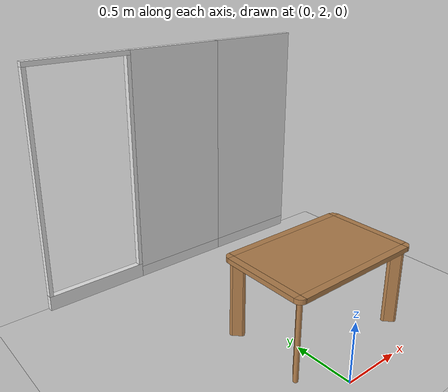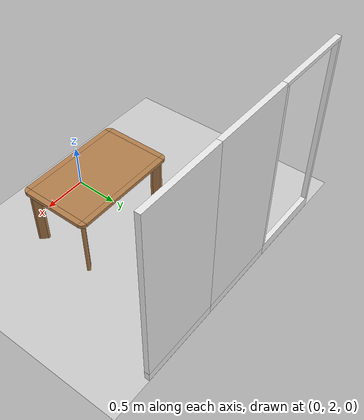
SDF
<sdf version="1.6">
 <world name="default">
  <model name="gplane">
   <link name="body">
    <collision name="gplane_coll">
     <geometry><plane><normal>0 0 1</normal><size>8 10</size></plane></geometry>
     <surface><contact><ode><kp>1e+06</kp><kd>1</kd></ode></contact></surface>
     <laser_retro>2000</laser_retro>
    </collision>
    <visual name="gplane_vis">
     <geometry><plane><normal>0 0 1</normal><size>6.585 8.405</size></plane></geometry>
     <material>
      <script>
       <uri>model://base_materials/carpet/scripts</uri>
       <uri>model://base_materials/carpet/textures</uri>
       <name>carpet/carpet01</name>
      </script>
     </material>
     <cast_shadows>0</cast_shadows>
    </visual>
    <velocity_decay><linear>0</linear><angular>0</angular></velocity_decay>
   </link>
   <static>1</static>
  </model>
  <model name="wall_right_c">
   <link name="link">
    <inertial>
     <mass>50</mass>
     <inertia><ixx>1</ixx><ixy>0</ixy><ixz>0</ixz><iyy>1</iyy><iyz>0</iyz><izz>1</izz></inertia>
    </inertial>
    <visual name="bottom_frame">
     <pose>0 0 0.05 0 -0 0</pose>
     <geometry><box><size>0.055 0.9 0.1</size></box></geometry>
     <material>
      <script><uri>model://base_materials/color/scripts</uri><name>hsr_color/white</name></script>
     </material>
    </visual>
    <collision name="collision_bottom_frame">
     <pose>0 0 0.05 0 -0 0</pose>
     <geometry><box><size>0.055 0.9 0.1</size></box></geometry>
    </collision>
    <visual name="wall">
     <pose>0 0 1.095 0 -0 0</pose>
     <geometry><box><size>0.055 0.9 1.99</size></box></geometry>
     <material>
      <script>
       <uri>model://base_materials/wall/scripts</uri>
       <uri>model://base_materials/wall/textures</uri>
       <name>wall/white_noise</name>
      </script>
     </material>
    </visual>
    <collision name="collision_wall">
     <pose>0 0 1.095 0 -0 0</pose>
     <geometry><box><size>0.055 0.9 1.99</size></box></geometry>
    </collision>
    <velocity_decay><linear>0</linear><angular>0</angular></velocity_decay>
   </link>
   <static>1</static>
   <pose>0.9875 4.175 0 0 -0 1.5708</pose>
  </model>
  <model name="wall_right_d">
   <link name="link">
    <inertial>
     <mass>50</mass>
     <inertia><ixx>1</ixx><ixy>0</ixy><ixz>0</ixz><iyy>1</iyy><iyz>0</iyz><izz>1</izz></inertia>
    </inertial>
    <visual name="bottom_frame">
     <pose>0 0 0.05 0 -0 0</pose>
     <geometry><box><size>0.055 0.9 0.1</size></box></geometry>
     <material>
      <script><uri>model://base_materials/color/scripts</uri><name>hsr_color/white</name></script>
     </material>
    </visual>
    <collision name="collision_bottom_frame">
     <pose>0 0 0.05 0 -0 0</pose>
     <geometry><box><size>0.055 0.9 0.1</size></box></geometry>
    </collision>
    <visual name="wall">
     <pose>0 0 1.095 0 -0 0</pose>
     <geometry><box><size>0.055 0.9 1.99</size></box></geometry>
     <material>
      <script>
       <uri>model://base_materials/wall/scripts</uri>
       <uri>model://base_materials/wall/textures</uri>
       <name>wall/white_noise</name>
      </script>
     </material>
    </visual>
    <collision name="collision_wall">
     <pose>0 0 1.095 0 -0 0</pose>
     <geometry><box><size>0.055 0.9 1.99</size></box></geometry>
    </collision>
    <velocity_decay><linear>0</linear><angular>0</angular></velocity_decay>
   </link>
   <static>1</static>
   <pose>0.0875 4.175 0 0 -0 1.5708</pose>
  </model>
  <model name="wall_right_e">
   <link name="link">
    <inertial>
     <mass>50</mass>
     <inertia><ixx>1</ixx><ixy>0</ixy><ixz>0</ixz><iyy>1</iyy><iyz>0</iyz><izz>1</izz></inertia>
    </inertial>
    <visual name="bottom_frame">
     <pose>0 0 0.065 0 -0 0</pose>
     <geometry><box><size>0.055 0.9 0.13</size></box></geometry>
     <material>
      <script><uri>model://base_materials/color/scripts</uri><name>hsr_color/white</name></script>
     </material>
    </visual>
    <collision name="collision_bottom_frame">
     <pose>0 0 0.065 0 -0 0</pose>
     <geometry><box><size>0.055 0.9 0.13</size></box></geometry>
    </collision>
    <visual name="right_frame">
     <pose>0 0.4325 1.09 0 -0 0</pose>
     <geometry><box><size>0.055 0.035 1.92</size></box></geometry>
     <material>
      <script><uri>model://base_materials/color/scripts</uri><name>hsr_color/white</name></script>
     </material>
    </visual>
    <collision name="collision_right_frame">
     <pose>0 0.4325 1.09 0 -0 0</pose>
     <geometry><box><size>0.055 0.035 1.92</size></box></geometry>
    </collision>
    <visual name="left_frame">
     <pose>0 -0.4325 1.09 0 -0 0</pose>
     <geometry><box><size>0.055 0.035 1.92</size></box></geometry>
     <material>
      <script><uri>model://base_materials/color/scripts</uri><name>hsr_color/white</name></script>
     </material>
    </visual>
    <collision name="collision_left_frame">
     <pose>0 -0.4325 1.09 0 -0 0</pose>
     <geometry><box><size>0.055 0.035 1.92</size></box></geometry>
    </collision>
    <visual name="top_frame">
     <pose>0 0 2.07 0 -0 0</pose>
     <geometry><box><size>0.055 0.9 0.04</size></box></geometry>
     <material>
      <script><uri>model://base_materials/color/scripts</uri><name>hsr_color/white</name></script>
     </material>
    </visual>
    <collision name="collision_top_frame">
     <pose>0 0 2.07 0 -0 0</pose>
     <geometry><box><size>0.055 0.9 0.04</size></box></geometry>
    </collision>
    <velocity_decay><linear>0</linear><angular>0</angular></velocity_decay>
   </link>
   <static>1</static>
   <pose>-0.8125 4.175 0 0 -0 1.5708</pose>
  </model>
  <model name="kitchen_table">
   <link name="link">
    <inertial>
     <mass>10</mass>
     <inertia><ixx>1</ixx><ixy>0</ixy><ixz>0</ixz><iyy>1</iyy><iyz>0</iyz><izz>1</izz></inertia>
    </inertial>
    <visual name="center_board">
     <pose>0 0 0.68 0 -0 0</pose>
     <geometry><box><size>0.68 1.13 0.04</size></box></geometry>
     <material>
      <script><uri>model://base_materials/wood/scripts/wood.material</uri><name>base_materials/wood</name></script>
     </material>
    </visual>
    <collision name="collision_center_board">
     <pose>0 0 0.68 0 -0 0</pose>
     <geometry><box><size>0.68 1.13 0.04</size></box></geometry>
    </collision>
    <visual name="front_board">
     <pose>0.37 0 0.68 0 -0 0</pose>
     <geometry><box><size>0.06 1.13 0.04</size></box></geometry>
     <material>
      <script><uri>model://base_materials/wood/scripts/wood.material</uri><name>base_materials/wood</name></script>
     </material>
    </visual>
    <collision name="collision_front_board">
     <pose>0.37 0 0.68 0 -0 0</pose>
     <geometry><box><size>0.06 1.13 0.04</size></box></geometry>
    </collision>
    <visual name="back_board">
     <pose>-0.37 0 0.68 0 -0 0</pose>
     <geometry><box><size>0.06 1.13 0.04</size></box></geometry>
     <material>
      <script><uri>model://base_materials/wood/scripts/wood.material</uri><name>base_materials/wood</name></script>
     </material>
    </visual>
    <collision name="collision_back_board">
     <pose>-0.37 0 0.68 0 -0 0</pose>
     <geometry><box><size>0.06 1.13 0.04</size></box></geometry>
    </collision>
    <visual name="right_board">
     <pose>0 0.595 0.68 0 -0 0</pose>
     <geometry><box><size>0.68 0.06 0.04</size></box></geometry>
     <material>
      <script><uri>model://base_materials/wood/scripts/wood.material</uri><name>base_materials/wood</name></script>
     </material>
    </visual>
    <collision name="collision_right_board">
     <pose>0 0.595 0.68 0 -0 0</pose>
     <geometry><box><size>0.68 0.06 0.04</size></box></geometry>
    </collision>
    <visual name="left_board">
     <pose>0 -0.595 0.68 0 -0 0</pose>
     <geometry><box><size>0.68 0.06 0.04</size></box></geometry>
     <material>
      <script><uri>model://base_materials/wood/scripts/wood.material</uri><name>base_materials/wood</name></script>
     </material>
    </visual>
    <collision name="collision_left_board">
     <pose>0 -0.595 0.68 0 -0 0</pose>
     <geometry><box><size>0.68 0.06 0.04</size></box></geometry>
    </collision>
    <visual name="front_right_corner_board">
     <pose>0.34 0.565 0.68 0 -0 0</pose>
     <geometry><cylinder><radius>0.06</radius><length>0.039</length></cylinder></geometry>
     <material>
      <script><uri>model://base_materials/wood/scripts/wood.material</uri><name>base_materials/wood</name></script>
     </material>
    </visual>
    <collision name="collision_front_right_corner_board">
     <pose>0.34 0.565 0.68 0 -0 0</pose>
     <geometry><cylinder><radius>0.06</radius><length>0.039</length></cylinder></geometry>
    </collision>
    <visual name="front_left_corner_board">
     <pose>0.34 -0.565 0.68 0 -0 0</pose>
     <geometry><cylinder><radius>0.06</radius><length>0.039</length></cylinder></geometry>
     <material>
      <script><uri>model://base_materials/wood/scripts/wood.material</uri><name>base_materials/wood</name></script>
     </material>
    </visual>
    <collision name="collision_front_left_corner_board">
     <pose>0.34 -0.565 0.68 0 -0 0</pose>
     <geometry><cylinder><radius>0.06</radius><length>0.039</length></cylinder></geometry>
    </collision>
    <visual name="front_back_right_corner_board">
     <pose>-0.34 0.565 0.68 0 -0 0</pose>
     <geometry><cylinder><radius>0.06</radius><length>0.039</length></cylinder></geometry>
     <material>
      <script><uri>model://base_materials/wood/scripts/wood.material</uri><name>base_materials/wood</name></script>
     </material>
    </visual>
    <collision name="collision_back_right_corner_board">
     <pose>-0.34 0.565 0.68 0 -0 0</pose>
     <geometry><cylinder><radius>0.06</radius><length>0.039</length></cylinder></geometry>
    </collision>
    <visual name="front_back_left_corner_board">
     <pose>-0.34 -0.565 0.68 0 -0 0</pose>
     <geometry><cylinder><radius>0.06</radius><length>0.039</length></cylinder></geometry>
     <material>
      <script><uri>model://base_materials/wood/scripts/wood.material</uri><name>base_materials/wood</name></script>
     </material>
    </visual>
    <collision name="collision_back_left_corner_board">
     <pose>-0.34 -0.565 0.68 0 -0 0</pose>
     <geometry><cylinder><radius>0.06</radius><length>0.039</length></cylinder></geometry>
    </collision>
    <visual name="front_left_corner_frame1">
     <pose>0.345858 -0.57086 0.33 0 -0 0</pose>
     <geometry><cylinder><radius>0.02</radius><length>0.66</length></cylinder></geometry>
     <material>
      <script><uri>model://base_materials/wood/scripts/wood.material</uri><name>base_materials/wood</name></script>
     </material>
    </visual>
    <collision name="collision_front_left_corner_frame1">
     <pose>0.345858 -0.57086 0.33 0 -0 0</pose>
     <geometry><cylinder><radius>0.02</radius><length>0.66</length></cylinder></geometry>
    </collision>
    <visual name="front_left_corner_frame2">
     <pose>0.317574 -0.54257 0.33 0 -0 0.7854</pose>
     <geometry><box><size>0.04 0.08 0.66</size></box></geometry>
     <material>
      <script><uri>model://base_materials/wood/scripts/wood.material</uri><name>base_materials/wood</name></script>
     </material>
    </visual>
    <collision name="collision_front_left_corner_frame2">
     <pose>0.317574 -0.54257 0.33 0 -0 0.7854</pose>
     <geometry><box><size>0.04 0.08 0.66</size></box></geometry>
    </collision>
    <visual name="front_left_corner_frame3">
     <pose>0.289289 -0.51429 0.33 0 -0 0</pose>
     <geometry><cylinder><radius>0.02</radius><length>0.66</length></cylinder></geometry>
     <material>
      <script><uri>model://base_materials/wood/scripts/wood.material</uri><name>base_materials/wood</name></script>
     </material>
    </visual>
    <collision name="collision_front_left_corner_frame3">
     <pose>0.289289 -0.51429 0.33 0 -0 0</pose>
     <geometry><cylinder><radius>0.02</radius><length>0.66</length></cylinder></geometry>
    </collision>
    <visual name="front_right_corner_frame1">
     <pose>0.345858 0.57086 0.33 0 -0 0</pose>
     <geometry><cylinder><radius>0.02</radius><length>0.66</length></cylinder></geometry>
     <material>
      <script><uri>model://base_materials/wood/scripts/wood.material</uri><name>base_materials/wood</name></script>
     </material>
    </visual>
    <collision name="collision_front_right_corner_frame1">
     <pose>0.345858 0.57086 0.33 0 -0 0</pose>
     <geometry><cylinder><radius>0.02</radius><length>0.66</length></cylinder></geometry>
    </collision>
    <visual name="front_right_corner_frame2">
     <pose>0.317574 0.54257 0.33 0 0 -0.7854</pose>
     <geometry><box><size>0.04 0.08 0.66</size></box></geometry>
     <material>
      <script><uri>model://base_materials/wood/scripts/wood.material</uri><name>base_materials/wood</name></script>
     </material>
    </visual>
    <collision name="collision_front_right_corner_frame2">
     <pose>0.317574 0.54257 0.33 0 0 -0.7854</pose>
     <geometry><box><size>0.04 0.08 0.66</size></box></geometry>
    </collision>
    <visual name="front_right_corner_frame3">
     <pose>0.289289 0.51429 0.33 0 -0 0</pose>
     <geometry><cylinder><radius>0.02</radius><length>0.66</length></cylinder></geometry>
     <material>
      <script><uri>model://base_materials/wood/scripts/wood.material</uri><name>base_materials/wood</name></script>
     </material>
    </visual>
    <collision name="collision_front_right_corner_frame3">
     <pose>0.289289 0.51429 0.33 0 -0 0</pose>
     <geometry><cylinder><radius>0.02</radius><length>0.66</length></cylinder></geometry>
    </collision>
    <visual name="back_left_corner_frame1">
     <pose>-0.345858 -0.57086 0.33 0 -0 0</pose>
     <geometry><cylinder><radius>0.02</radius><length>0.66</length></cylinder></geometry>
     <material>
      <script><uri>model://base_materials/wood/scripts/wood.material</uri><name>base_materials/wood</name></script>
     </material>
    </visual>
    <collision name="collision_back_left_corner_frame1">
     <pose>-0.345858 -0.57086 0.33 0 -0 0</pose>
     <geometry><cylinder><radius>0.02</radius><length>0.66</length></cylinder></geometry>
    </collision>
    <visual name="back_left_corner_frame2">
     <pose>-0.317574 -0.54257 0.33 0 0 -0.7854</pose>
     <geometry><box><size>0.04 0.08 0.66</size></box></geometry>
     <material>
      <script><uri>model://base_materials/wood/scripts/wood.material</uri><name>base_materials/wood</name></script>
     </material>
    </visual>
    <collision name="collision_back_left_corner_frame2">
     <pose>-0.317574 -0.54257 0.33 0 0 -0.7854</pose>
     <geometry><box><size>0.04 0.08 0.66</size></box></geometry>
    </collision>
    <visual name="back_left_corner_frame3">
     <pose>-0.289289 -0.51429 0.33 0 -0 0</pose>
     <geometry><cylinder><radius>0.02</radius><length>0.66</length></cylinder></geometry>
     <material>
      <script><uri>model://base_materials/wood/scripts/wood.material</uri><name>base_materials/wood</name></script>
     </material>
    </visual>
    <collision name="collision_back_left_corner_frame3">
     <pose>-0.289289 -0.51429 0.33 0 -0 0</pose>
     <geometry><cylinder><radius>0.02</radius><length>0.66</length></cylinder></geometry>
    </collision>
    <visual name="back_right_corner_frame1">
     <pose>-0.345858 0.57086 0.33 0 -0 0</pose>
     <geometry><cylinder><radius>0.02</radius><length>0.66</length></cylinder></geometry>
     <material>
      <script><uri>model://base_materials/wood/scripts/wood.material</uri><name>base_materials/wood</name></script>
     </material>
    </visual>
    <collision name="collision_back_right_corner_frame1">
     <pose>-0.345858 0.57086 0.33 0 -0 0</pose>
     <geometry><cylinder><radius>0.02</radius><length>0.66</length></cylinder></geometry>
    </collision>
    <visual name="back_right_corner_frame2">
     <pose>-0.317574 0.54257 0.33 0 -0 0.7854</pose>
     <geometry><box><size>0.04 0.08 0.66</size></box></geometry>
     <material>
      <script><uri>model://base_materials/wood/scripts/wood.material</uri><name>base_materials/wood</name></script>
     </material>
    </visual>
    <collision name="collision_back_right_corner_frame2">
     <pose>-0.317574 0.54257 0.33 0 -0 0.7854</pose>
     <geometry><box><size>0.04 0.08 0.66</size></box></geometry>
    </collision>
    <visual name="back_right_corner_frame3">
     <pose>-0.289289 0.51429 0.33 0 -0 0</pose>
     <geometry><cylinder><radius>0.02</radius><length>0.66</length></cylinder></geometry>
     <material>
      <script><uri>model://base_materials/wood/scripts/wood.material</uri><name>base_materials/wood</name></script>
     </material>
    </visual>
    <collision name="collision_back_right_corner_frame3">
     <pose>-0.289289 0.51429 0.33 0 -0 0</pose>
     <geometry><cylinder><radius>0.02</radius><length>0.66</length></cylinder></geometry>
    </collision>
    <velocity_decay><linear>0</linear><angular>0</angular></velocity_decay>
   </link>
   <static>1</static>
   <pose>0.29 2.6 0 0 0 -1.5708</pose>
  </model>
 </world>
</sdf>
